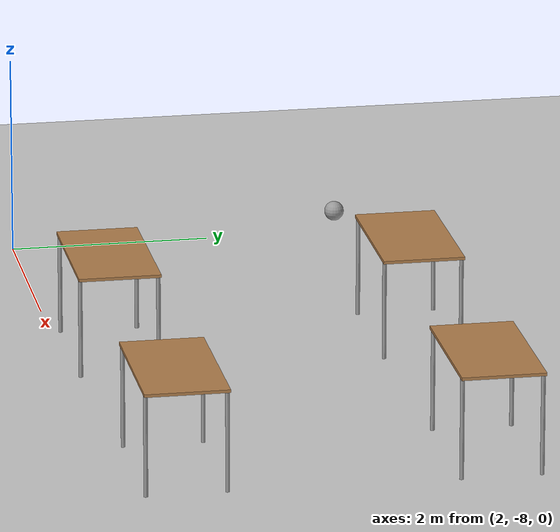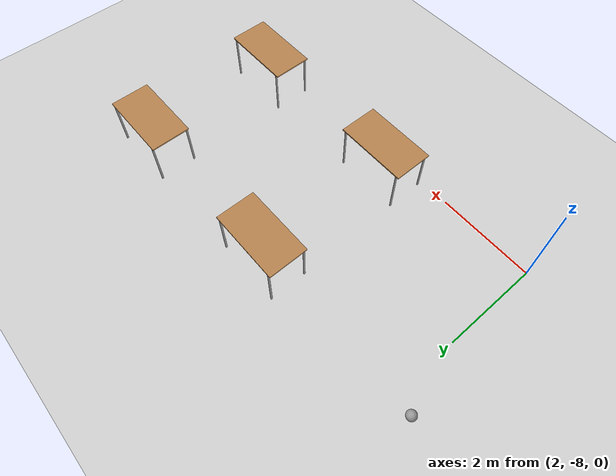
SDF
<sdf version="1.6">
 <world name="default">
  <model name="ground_plane">
   <static>1</static>
   <link name="link">
    <collision name="collision">
     <geometry><plane><normal>0 0 1</normal><size>100 100</size></plane></geometry>
     <surface>
      <contact><collide_bitmask>65535</collide_bitmask></contact>
      <friction><ode><mu>100</mu><mu2>50</mu2></ode></friction>
     </surface>
    </collision>
    <visual name="visual">
     <cast_shadows>0</cast_shadows>
     <geometry><plane><normal>0 0 1</normal><size>100 100</size></plane></geometry>
     <material>
      <script><uri>file://media/materials/scripts/gazebo.material</uri><name>Gazebo/Grey</name></script>
     </material>
    </visual>
   </link>
  </model>
  <model name="table_clone_0">
   <static>1</static>
   <link name="link">
    <collision name="surface">
     <pose>0 0 1 0 -0 0</pose>
     <geometry><box><size>1.5 0.8 0.03</size></box></geometry>
     <surface><friction><ode><mu>0.6</mu><mu2>0.6</mu2></ode></friction></surface>
    </collision>
    <visual name="visual1">
     <pose>0 0 1 0 -0 0</pose>
     <geometry><box><size>1.5 0.8 0.03</size></box></geometry>
     <material>
      <script><uri>file://media/materials/scripts/gazebo.material</uri><name>Gazebo/Wood</name></script>
     </material>
    </visual>
    <collision name="front_left_leg">
     <pose>0.68 0.38 0.5 0 -0 0</pose>
     <geometry><cylinder><radius>0.02</radius><length>1</length></cylinder></geometry>
    </collision>
    <visual name="front_left_leg">
     <pose>0.68 0.38 0.5 0 -0 0</pose>
     <geometry><cylinder><radius>0.02</radius><length>1</length></cylinder></geometry>
     <material>
      <script><uri>file://media/materials/scripts/gazebo.material</uri><name>Gazebo/Grey</name></script>
     </material>
    </visual>
    <collision name="front_right_leg">
     <pose>0.68 -0.38 0.5 0 -0 0</pose>
     <geometry><cylinder><radius>0.02</radius><length>1</length></cylinder></geometry>
    </collision>
    <visual name="front_right_leg">
     <pose>0.68 -0.38 0.5 0 -0 0</pose>
     <geometry><cylinder><radius>0.02</radius><length>1</length></cylinder></geometry>
     <material>
      <script><uri>file://media/materials/scripts/gazebo.material</uri><name>Gazebo/Grey</name></script>
     </material>
    </visual>
    <collision name="back_right_leg">
     <pose>-0.68 -0.38 0.5 0 -0 0</pose>
     <geometry><cylinder><radius>0.02</radius><length>1</length></cylinder></geometry>
    </collision>
    <visual name="back_right_leg">
     <pose>-0.68 -0.38 0.5 0 -0 0</pose>
     <geometry><cylinder><radius>0.02</radius><length>1</length></cylinder></geometry>
     <material>
      <script><uri>file://media/materials/scripts/gazebo.material</uri><name>Gazebo/Grey</name></script>
     </material>
    </visual>
    <collision name="back_left_leg">
     <pose>-0.68 0.38 0.5 0 -0 0</pose>
     <geometry><cylinder><radius>0.02</radius><length>1</length></cylinder></geometry>
    </collision>
    <visual name="back_left_leg">
     <pose>-0.68 0.38 0.5 0 -0 0</pose>
     <geometry><cylinder><radius>0.02</radius><length>1</length></cylinder></geometry>
     <material>
      <script><uri>file://media/materials/scripts/gazebo.material</uri><name>Gazebo/Grey</name></script>
     </material>
    </visual>
   </link>
   <pose>8.72299 -7.42184 0 0 -0 0</pose>
  </model>
  <model name="table_clone_0_clone">
   <static>1</static>
   <link name="link">
    <collision name="surface">
     <pose>0 0 1 0 -0 0</pose>
     <geometry><box><size>1.5 0.8 0.03</size></box></geometry>
     <surface><friction><ode><mu>0.6</mu><mu2>0.6</mu2></ode></friction></surface>
    </collision>
    <visual name="visual1">
     <pose>0 0 1 0 -0 0</pose>
     <geometry><box><size>1.5 0.8 0.03</size></box></geometry>
     <material>
      <script><uri>file://media/materials/scripts/gazebo.material</uri><name>Gazebo/Wood</name></script>
     </material>
    </visual>
    <collision name="front_left_leg">
     <pose>0.68 0.38 0.5 0 -0 0</pose>
     <geometry><cylinder><radius>0.02</radius><length>1</length></cylinder></geometry>
    </collision>
    <visual name="front_left_leg">
     <pose>0.68 0.38 0.5 0 -0 0</pose>
     <geometry><cylinder><radius>0.02</radius><length>1</length></cylinder></geometry>
     <material>
      <script><uri>file://media/materials/scripts/gazebo.material</uri><name>Gazebo/Grey</name></script>
     </material>
    </visual>
    <collision name="front_right_leg">
     <pose>0.68 -0.38 0.5 0 -0 0</pose>
     <geometry><cylinder><radius>0.02</radius><length>1</length></cylinder></geometry>
    </collision>
    <visual name="front_right_leg">
     <pose>0.68 -0.38 0.5 0 -0 0</pose>
     <geometry><cylinder><radius>0.02</radius><length>1</length></cylinder></geometry>
     <material>
      <script><uri>file://media/materials/scripts/gazebo.material</uri><name>Gazebo/Grey</name></script>
     </material>
    </visual>
    <collision name="back_right_leg">
     <pose>-0.68 -0.38 0.5 0 -0 0</pose>
     <geometry><cylinder><radius>0.02</radius><length>1</length></cylinder></geometry>
    </collision>
    <visual name="back_right_leg">
     <pose>-0.68 -0.38 0.5 0 -0 0</pose>
     <geometry><cylinder><radius>0.02</radius><length>1</length></cylinder></geometry>
     <material>
      <script><uri>file://media/materials/scripts/gazebo.material</uri><name>Gazebo/Grey</name></script>
     </material>
    </visual>
    <collision name="back_left_leg">
     <pose>-0.68 0.38 0.5 0 -0 0</pose>
     <geometry><cylinder><radius>0.02</radius><length>1</length></cylinder></geometry>
    </collision>
    <visual name="back_left_leg">
     <pose>-0.68 0.38 0.5 0 -0 0</pose>
     <geometry><cylinder><radius>0.02</radius><length>1</length></cylinder></geometry>
     <material>
      <script><uri>file://media/materials/scripts/gazebo.material</uri><name>Gazebo/Grey</name></script>
     </material>
    </visual>
   </link>
   <pose>8.77167 -4.4817 0 0 -0 0</pose>
  </model>
  <model name="table_clone_0_clone_0">
   <static>1</static>
   <link name="link">
    <collision name="surface">
     <pose>0 0 1 0 -0 0</pose>
     <geometry><box><size>1.5 0.8 0.03</size></box></geometry>
     <surface><friction><ode><mu>0.6</mu><mu2>0.6</mu2></ode></friction></surface>
    </collision>
    <visual name="visual1">
     <pose>0 0 1 0 -0 0</pose>
     <geometry><box><size>1.5 0.8 0.03</size></box></geometry>
     <material>
      <script><uri>file://media/materials/scripts/gazebo.material</uri><name>Gazebo/Wood</name></script>
     </material>
    </visual>
    <collision name="front_left_leg">
     <pose>0.68 0.38 0.5 0 -0 0</pose>
     <geometry><cylinder><radius>0.02</radius><length>1</length></cylinder></geometry>
    </collision>
    <visual name="front_left_leg">
     <pose>0.68 0.38 0.5 0 -0 0</pose>
     <geometry><cylinder><radius>0.02</radius><length>1</length></cylinder></geometry>
     <material>
      <script><uri>file://media/materials/scripts/gazebo.material</uri><name>Gazebo/Grey</name></script>
     </material>
    </visual>
    <collision name="front_right_leg">
     <pose>0.68 -0.38 0.5 0 -0 0</pose>
     <geometry><cylinder><radius>0.02</radius><length>1</length></cylinder></geometry>
    </collision>
    <visual name="front_right_leg">
     <pose>0.68 -0.38 0.5 0 -0 0</pose>
     <geometry><cylinder><radius>0.02</radius><length>1</length></cylinder></geometry>
     <material>
      <script><uri>file://media/materials/scripts/gazebo.material</uri><name>Gazebo/Grey</name></script>
     </material>
    </visual>
    <collision name="back_right_leg">
     <pose>-0.68 -0.38 0.5 0 -0 0</pose>
     <geometry><cylinder><radius>0.02</radius><length>1</length></cylinder></geometry>
    </collision>
    <visual name="back_right_leg">
     <pose>-0.68 -0.38 0.5 0 -0 0</pose>
     <geometry><cylinder><radius>0.02</radius><length>1</length></cylinder></geometry>
     <material>
      <script><uri>file://media/materials/scripts/gazebo.material</uri><name>Gazebo/Grey</name></script>
     </material>
    </visual>
    <collision name="back_left_leg">
     <pose>-0.68 0.38 0.5 0 -0 0</pose>
     <geometry><cylinder><radius>0.02</radius><length>1</length></cylinder></geometry>
    </collision>
    <visual name="back_left_leg">
     <pose>-0.68 0.38 0.5 0 -0 0</pose>
     <geometry><cylinder><radius>0.02</radius><length>1</length></cylinder></geometry>
     <material>
      <script><uri>file://media/materials/scripts/gazebo.material</uri><name>Gazebo/Grey</name></script>
     </material>
    </visual>
   </link>
   <pose>5.33935 -7.51842 0 0 -0 0</pose>
  </model>
  <model name="table_clone_0_clone_0_clone">
   <static>1</static>
   <link name="link">
    <collision name="surface">
     <pose>0 0 1 0 -0 0</pose>
     <geometry><box><size>1.5 0.8 0.03</size></box></geometry>
     <surface><friction><ode><mu>0.6</mu><mu2>0.6</mu2></ode></friction></surface>
    </collision>
    <visual name="visual1">
     <pose>0 0 1 0 -0 0</pose>
     <geometry><box><size>1.5 0.8 0.03</size></box></geometry>
     <material>
      <script><uri>file://media/materials/scripts/gazebo.material</uri><name>Gazebo/Wood</name></script>
     </material>
    </visual>
    <collision name="front_left_leg">
     <pose>0.68 0.38 0.5 0 -0 0</pose>
     <geometry><cylinder><radius>0.02</radius><length>1</length></cylinder></geometry>
    </collision>
    <visual name="front_left_leg">
     <pose>0.68 0.38 0.5 0 -0 0</pose>
     <geometry><cylinder><radius>0.02</radius><length>1</length></cylinder></geometry>
     <material>
      <script><uri>file://media/materials/scripts/gazebo.material</uri><name>Gazebo/Grey</name></script>
     </material>
    </visual>
    <collision name="front_right_leg">
     <pose>0.68 -0.38 0.5 0 -0 0</pose>
     <geometry><cylinder><radius>0.02</radius><length>1</length></cylinder></geometry>
    </collision>
    <visual name="front_right_leg">
     <pose>0.68 -0.38 0.5 0 -0 0</pose>
     <geometry><cylinder><radius>0.02</radius><length>1</length></cylinder></geometry>
     <material>
      <script><uri>file://media/materials/scripts/gazebo.material</uri><name>Gazebo/Grey</name></script>
     </material>
    </visual>
    <collision name="back_right_leg">
     <pose>-0.68 -0.38 0.5 0 -0 0</pose>
     <geometry><cylinder><radius>0.02</radius><length>1</length></cylinder></geometry>
    </collision>
    <visual name="back_right_leg">
     <pose>-0.68 -0.38 0.5 0 -0 0</pose>
     <geometry><cylinder><radius>0.02</radius><length>1</length></cylinder></geometry>
     <material>
      <script><uri>file://media/materials/scripts/gazebo.material</uri><name>Gazebo/Grey</name></script>
     </material>
    </visual>
    <collision name="back_left_leg">
     <pose>-0.68 0.38 0.5 0 -0 0</pose>
     <geometry><cylinder><radius>0.02</radius><length>1</length></cylinder></geometry>
    </collision>
    <visual name="back_left_leg">
     <pose>-0.68 0.38 0.5 0 -0 0</pose>
     <geometry><cylinder><radius>0.02</radius><length>1</length></cylinder></geometry>
     <material>
      <script><uri>file://media/materials/scripts/gazebo.material</uri><name>Gazebo/Grey</name></script>
     </material>
    </visual>
   </link>
   <pose>5.31299 -4.53845 0 0 -0 0</pose>
  </model>
  <model name="myworld_wBall">
   <link name="link_0">
    <inertial>
     <mass>1</mass>
     <inertia><ixx>0.1</ixx><ixy>0</ixy><ixz>0</ixz><iyy>0.1</iyy><iyz>0</iyz><izz>0.1</izz></inertia>
    </inertial>
    <pose>-4e-06 2e-06 0 0 -0 0</pose>
    <visual name="visual">
     <geometry><sphere><radius>0.1</radius></sphere></geometry>
     <material>
      <lighting>1</lighting>
      <script><uri>file://media/materials/scripts/gazebo.material</uri><name>Gazebo/Grey</name></script>
      <shader type="pixel"><normal_map>__default__</normal_map></shader>
      <ambient>1 1 1 1</ambient>
      <diffuse>1 1 1 1</diffuse>
      <specular>1 1 1 1</specular>
      <emissive>1 1 1 1</emissive>
     </material>
    </visual>
    <collision name="collision">
     <geometry><sphere><radius>0.1</radius></sphere></geometry>
     <surface>
      <friction>
       <ode><mu>1</mu><mu2>1</mu2><fdir1>0 0 0</fdir1><slip1>0</slip1><slip2>0</slip2></ode>
       <torsional>
        <coefficient>1</coefficient>
        <patch_radius>0</patch_radius>
        <surface_radius>0</surface_radius>
        <use_patch_radius>1</use_patch_radius>
        <ode><slip>0</slip></ode>
       </torsional>
      </friction>
      <bounce><restitution_coefficient>0</restitution_coefficient><threshold>1e+06</threshold></bounce>
      <contact>
       <collide_without_contact>0</collide_without_contact>
       <collide_without_contact_bitmask>1</collide_without_contact_bitmask>
       <collide_bitmask>1</collide_bitmask>
       <ode>
        <soft_cfm>0</soft_cfm>
        <soft_erp>0.2</soft_erp>
        <kp>1e+13</kp>
        <kd>1</kd>
        <max_vel>0.01</max_vel>
        <min_depth>0</min_depth>
       </ode>
       <bullet>
        <split_impulse>1</split_impulse>
        <split_impulse_penetration_threshold>-0.01</split_impulse_penetration_threshold>
        <soft_cfm>0</soft_cfm>
        <soft_erp>0.2</soft_erp>
        <kp>1e+13</kp>
        <kd>1</kd>
       </bullet>
      </contact>
     </surface>
    </collision>
   </link>
   <static>0</static>
   <pose>1.61487 -4.5948 0.1 0 -0 0</pose>
  </model>
 </world>
</sdf>
